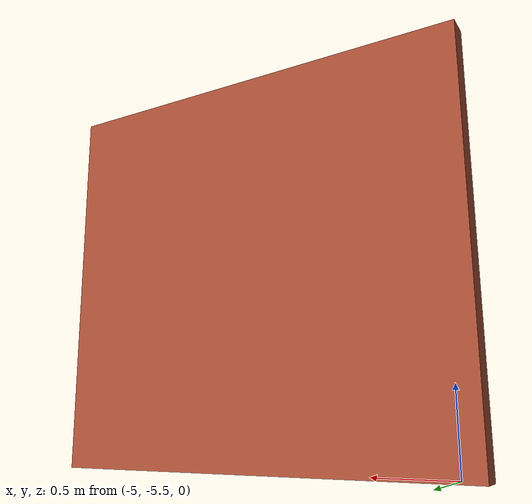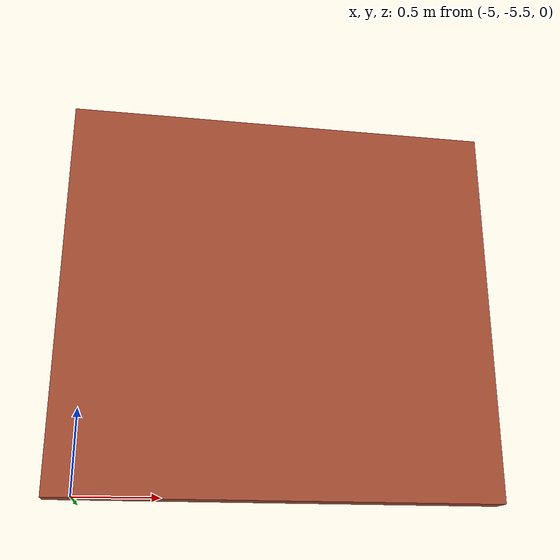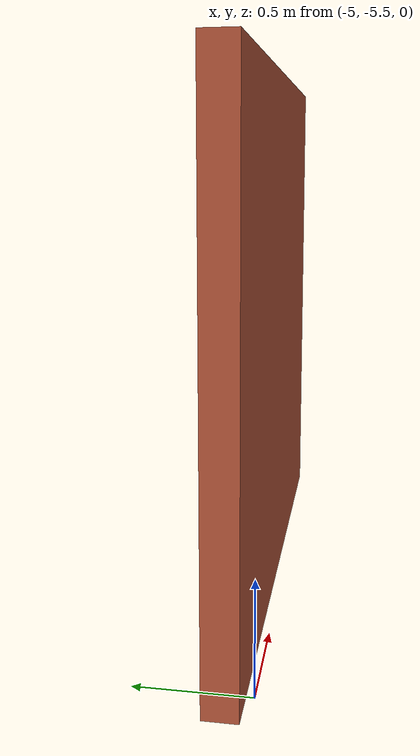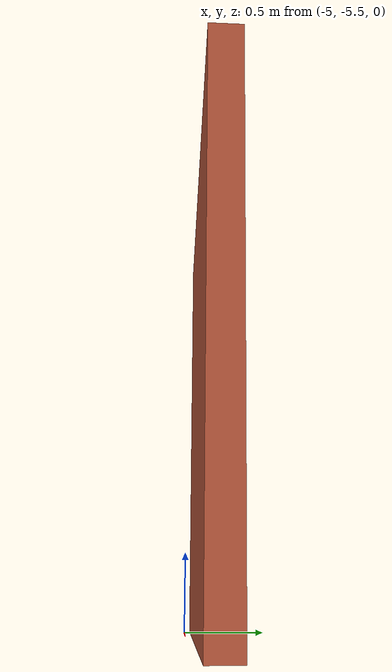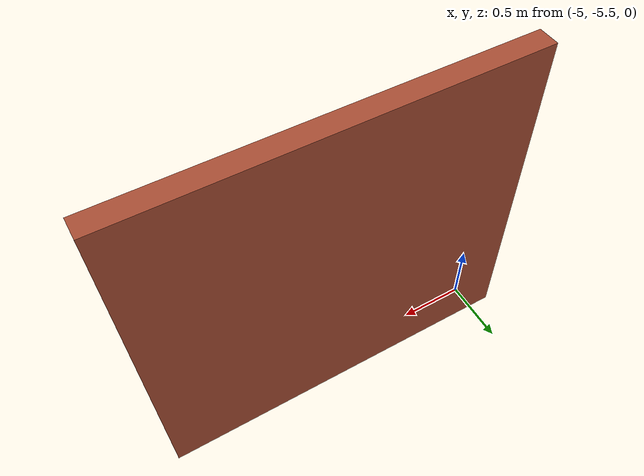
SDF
<?xml version='1.0'?>
<sdf version='1.6'>
  <model name='indoor1'>
    <pose frame=''>-3.79873 -5.39023 0 0 -0 0</pose>
    <link name='Wall_7'>
      <collision name='Wall_7_Collision'>
        <geometry>
          <box>
            <size>2.75 0.15 2.5</size>
          </box>
        </geometry>
        <pose frame=''>0 0 1.25 0 -0 0</pose>
      </collision>
      <visual name='Wall_7_Visual'>
        <pose frame=''>0 0 1.25 0 -0 0</pose>
        <geometry>
          <box>
            <size>2.75 0.15 2.5</size>
          </box>
        </geometry>
        <material>
          <script>
            <uri>file://media/materials/scripts/gazebo.material</uri>
            <name>Gazebo/Bricks</name>
          </script>
          <ambient>1 1 1 1</ambient>
        </material>
        <meta>
          <layer>0</layer>
        </meta>
      </visual>
      <pose frame=''>0 0 0 0 -0 0</pose>
    </link>
    <static>1</static>
  </model>
</sdf>
